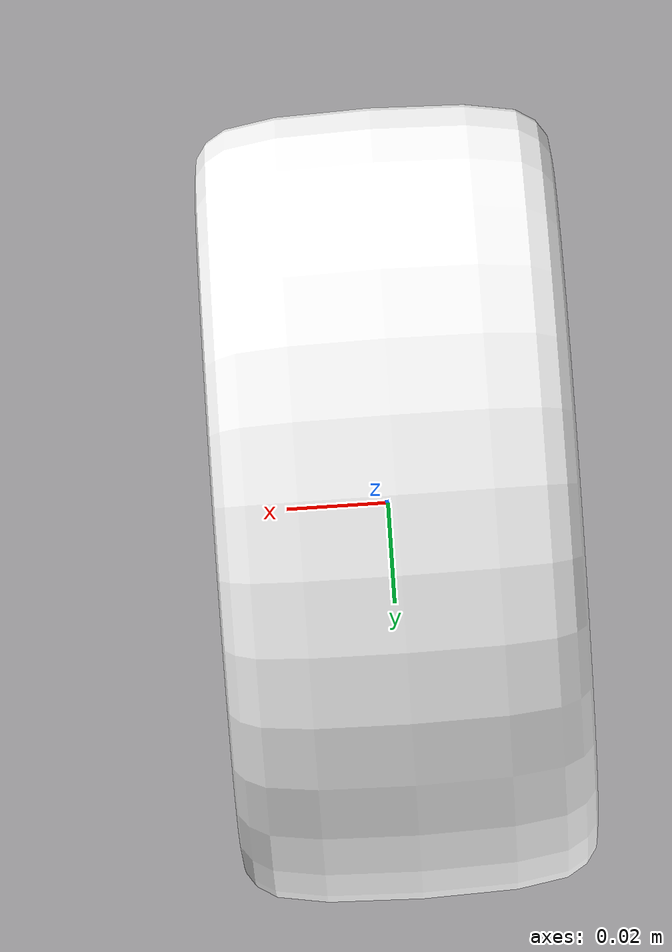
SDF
<?xml version="1.0"?>
<sdf version='1.4'>
  <model name="tire">
      <static>0</static>
      <link name="link">
        <inertial>
          <pose>0 0 0 0 0 0</pose>
          <mass>10.0</mass>
          <inertia>
            <ixx>0.1</ixx>
            <ixy>0.1</ixy>
            <ixz>0.1</ixz>
            <iyy>0.1</iyy>
            <iyz>0.1</iyz>
            <izz>0.1</izz>
          </inertia>
        </inertial>
        <collision name='collision'>
            <origin xyz="0 0 0" rpy="0 0 0"/>
                <mesh>
                    <uri>model://tire/meshes/tire.dae</uri>
                </mesh>
        </collision>
        <visual name="visual">
            <pose>0 0 0 0 0 0</pose>
            <geometry>
                <mesh>
                    <uri>model://tire/meshes/tire.dae</uri>
                    <scale>1.1 0.6 0.4</scale>
                </mesh>
            </geometry>
            <material>
            <ambient>0 1 0 1</ambient>
            <diffuse>1 1 1 1</diffuse>
            <specular>0 0.5 0 0</specular>
            <emissive>0 0 0 1</emissive>
            </material>
        </visual>
      </link>
    </model>
</sdf>
